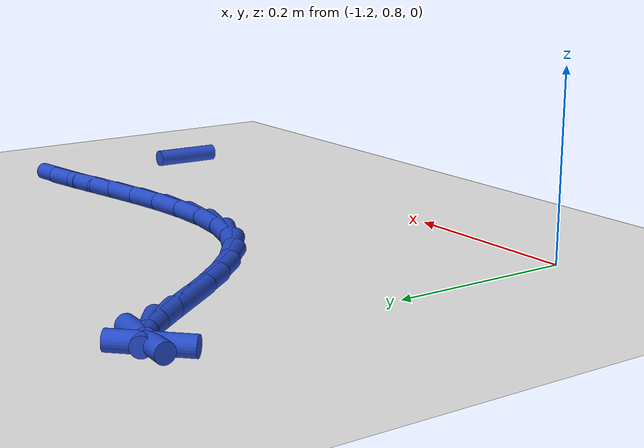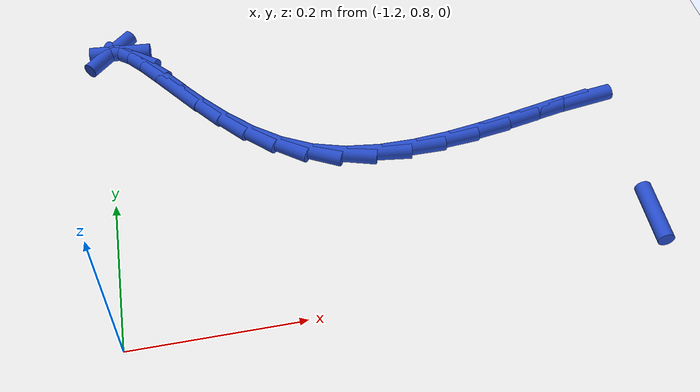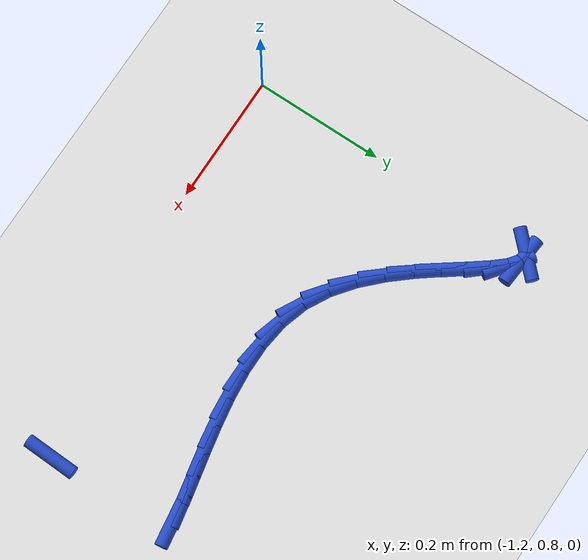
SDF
<sdf version="1.6">
 <world name="default">
  <model name="ground_plane">
   <static>1</static>
   <link name="link">
    <collision name="collision">
     <geometry><plane><normal>0 0 1</normal><size>100 100</size></plane></geometry>
     <surface><friction><ode><mu>100</mu><mu2>50</mu2></ode></friction></surface>
    </collision>
    <visual name="visual">
     <cast_shadows>0</cast_shadows>
     <geometry><plane><normal>0 0 1</normal><size>100 100</size></plane></geometry>
     <material>
      <script><uri>file://media/materials/scripts/gazebo.material</uri><name>Gazebo/WhiteGlow</name></script>
     </material>
    </visual>
   </link>
  </model>
  <model name="line">
   <link name="link_34">
    <pose>-0.5779277820706122 0.8586042943907588 0.01 0 1.57 1.5326726961803558</pose>
    <collision name="collision">
     <geometry><cylinder><radius>0.01</radius><length>0.08</length></cylinder></geometry>
    </collision>
    <visual name="visual">
     <material>
      <script><name>Gazebo/Blue</name><uri>file://media/materials/scripts/gazebo.material</uri></script>
     </material>
     <geometry><cylinder><radius>0.01</radius><length>0.08</length></cylinder></geometry>
    </visual>
   </link>
   <link name="link_43">
    <pose>-0.5984421162240932 1.0526860979696517 0.01 0 1.57 0.14355700047401923</pose>
    <collision name="collision">
     <geometry><cylinder><radius>0.01</radius><length>0.08</length></cylinder></geometry>
    </collision>
    <visual name="visual">
     <material>
      <script><name>Gazebo/Blue</name><uri>file://media/materials/scripts/gazebo.material</uri></script>
     </material>
     <geometry><cylinder><radius>0.01</radius><length>0.08</length></cylinder></geometry>
    </visual>
   </link>
   <link name="link_44">
    <pose>-0.6288400802435582 1.0482920306713335 0.01 0 1.57 0.19548418985887223</pose>
    <collision name="collision">
     <geometry><cylinder><radius>0.01</radius><length>0.08</length></cylinder></geometry>
    </collision>
    <visual name="visual">
     <material>
      <script><name>Gazebo/Blue</name><uri>file://media/materials/scripts/gazebo.material</uri></script>
     </material>
     <geometry><cylinder><radius>0.01</radius><length>0.08</length></cylinder></geometry>
    </visual>
   </link>
   <link name="link_45">
    <pose>-0.6639850225614471 1.0413328775841566 0.01 0 1.57 0.20791101739568002</pose>
    <collision name="collision">
     <geometry><cylinder><radius>0.01</radius><length>0.08</length></cylinder></geometry>
    </collision>
    <visual name="visual">
     <material>
      <script><name>Gazebo/Blue</name><uri>file://media/materials/scripts/gazebo.material</uri></script>
     </material>
     <geometry><cylinder><radius>0.01</radius><length>0.08</length></cylinder></geometry>
    </visual>
   </link>
   <link name="link_46">
    <pose>-0.7028580271560715 1.0331322468560424 0.01 0 1.57 0.19281450056939628</pose>
    <collision name="collision">
     <geometry><cylinder><radius>0.01</radius><length>0.08</length></cylinder></geometry>
    </collision>
    <visual name="visual">
     <material>
      <script><name>Gazebo/Blue</name><uri>file://media/materials/scripts/gazebo.material</uri></script>
     </material>
     <geometry><cylinder><radius>0.01</radius><length>0.08</length></cylinder></geometry>
    </visual>
   </link>
   <link name="link_47">
    <pose>-0.7444401780057441 1.0250137466349114 0.01 0 1.57 0.1539013766421355</pose>
    <collision name="collision">
     <geometry><cylinder><radius>0.01</radius><length>0.08</length></cylinder></geometry>
    </collision>
    <visual name="visual">
     <material>
      <script><name>Gazebo/Blue</name><uri>file://media/materials/scripts/gazebo.material</uri></script>
     </material>
     <geometry><cylinder><radius>0.01</radius><length>0.08</length></cylinder></geometry>
    </visual>
   </link>
   <link name="link_48">
    <pose>-0.787712559088777 1.0183009850686853 0.01 0 1.57 0.09040108089133105</pose>
    <collision name="collision">
     <geometry><cylinder><radius>0.01</radius><length>0.08</length></cylinder></geometry>
    </collision>
    <visual name="visual">
     <material>
      <script><name>Gazebo/Blue</name><uri>file://media/materials/scripts/gazebo.material</uri></script>
     </material>
     <geometry><cylinder><radius>0.01</radius><length>0.08</length></cylinder></geometry>
    </visual>
   </link>
   <link name="link_49">
    <pose>-0.8316562543834821 1.0143175703052851 0.01 0 1.57 -0.0015950999920103155</pose>
    <collision name="collision">
     <geometry><cylinder><radius>0.01</radius><length>0.08</length></cylinder></geometry>
    </collision>
    <visual name="visual">
     <material>
      <script><name>Gazebo/Blue</name><uri>file://media/materials/scripts/gazebo.material</uri></script>
     </material>
     <geometry><cylinder><radius>0.01</radius><length>0.08</length></cylinder></geometry>
    </visual>
   </link>
   <link name="link_50">
    <pose>-0.8752523478681721 1.0143871104926323 0.01 0 1.57 -0.12825628001047357</pose>
    <collision name="collision">
     <geometry><cylinder><radius>0.01</radius><length>0.08</length></cylinder></geometry>
    </collision>
    <visual name="visual">
     <material>
      <script><name>Gazebo/Blue</name><uri>file://media/materials/scripts/gazebo.material</uri></script>
     </material>
     <geometry><cylinder><radius>0.01</radius><length>0.08</length></cylinder></geometry>
    </visual>
   </link>
   <link name="link_51">
    <pose>-0.9174819235211589 1.0198332137786479 0.01 0 1.57 -0.2958955044156219</pose>
    <collision name="collision">
     <geometry><cylinder><radius>0.01</radius><length>0.08</length></cylinder></geometry>
    </collision>
    <visual name="visual">
     <material>
      <script><name>Gazebo/Blue</name><uri>file://media/materials/scripts/gazebo.material</uri></script>
     </material>
     <geometry><cylinder><radius>0.01</radius><length>0.08</length></cylinder></geometry>
    </visual>
   </link>
   <link name="link_52">
    <pose>-0.9573260653207549 1.0319794883112527 0.01 0 1.57 -0.4928797768121747</pose>
    <collision name="collision">
     <geometry><cylinder><radius>0.01</radius><length>0.08</length></cylinder></geometry>
    </collision>
    <visual name="visual">
     <material>
      <script><name>Gazebo/Blue</name><uri>file://media/materials/scripts/gazebo.material</uri></script>
     </material>
     <geometry><cylinder><radius>0.01</radius><length>0.08</length></cylinder></geometry>
    </visual>
   </link>
   <link name="link_53">
    <pose>-0.9939422205457629 1.0516457663799597 0.01 0 1.57 -0.6581254125900383</pose>
    <collision name="collision">
     <geometry><cylinder><radius>0.01</radius><length>0.08</length></cylinder></geometry>
    </collision>
    <visual name="visual">
     <material>
      <script><name>Gazebo/Blue</name><uri>file://media/materials/scripts/gazebo.material</uri></script>
     </material>
     <geometry><cylinder><radius>0.01</radius><length>0.08</length></cylinder></geometry>
    </visual>
   </link>
   <link name="link_54">
    <pose>-1.0272716527477728 1.0774129353545727 0.01 0 1.57 -0.7791599914562944</pose>
    <collision name="collision">
     <geometry><cylinder><radius>0.01</radius><length>0.08</length></cylinder></geometry>
    </collision>
    <visual name="visual">
     <material>
      <script><name>Gazebo/Blue</name><uri>file://media/materials/scripts/gazebo.material</uri></script>
     </material>
     <geometry><cylinder><radius>0.01</radius><length>0.08</length></cylinder></geometry>
    </visual>
   </link>
   <link name="link_55">
    <pose>-1.057473298693066 1.1072401063607482 0.01 0 1.57 -0.86332951874798</pose>
    <collision name="collision">
     <geometry><cylinder><radius>0.01</radius><length>0.08</length></cylinder></geometry>
    </collision>
    <visual name="visual">
     <material>
      <script><name>Gazebo/Blue</name><uri>file://media/materials/scripts/gazebo.material</uri></script>
     </material>
     <geometry><cylinder><radius>0.01</radius><length>0.08</length></cylinder></geometry>
    </visual>
   </link>
   <link name="link_56">
    <pose>-1.084706103627189 1.1390863663034132 0.01 0 1.57 -0.9162353490977402</pose>
    <collision name="collision">
     <geometry><cylinder><radius>0.01</radius><length>0.08</length></cylinder></geometry>
    </collision>
    <visual name="visual">
     <material>
      <script><name>Gazebo/Blue</name><uri>file://media/materials/scripts/gazebo.material</uri></script>
     </material>
     <geometry><cylinder><radius>0.01</radius><length>0.08</length></cylinder></geometry>
    </visual>
   </link>
   <link name="link_57">
    <pose>-1.1091290127956868 1.1709108020874945 0.01 0 1.57 -0.939212798556779</pose>
    <collision name="collision">
     <geometry><cylinder><radius>0.01</radius><length>0.08</length></cylinder></geometry>
    </collision>
    <visual name="visual">
     <material>
      <script><name>Gazebo/Blue</name><uri>file://media/materials/scripts/gazebo.material</uri></script>
     </material>
     <geometry><cylinder><radius>0.01</radius><length>0.08</length></cylinder></geometry>
    </visual>
   </link>
   <link name="link_58">
    <pose>-1.1309009714441047 1.2006725006179186 0.01 0 1.57 -0.9263874654811184</pose>
    <collision name="collision">
     <geometry><cylinder><radius>0.01</radius><length>0.08</length></cylinder></geometry>
    </collision>
    <visual name="visual">
     <material>
      <script><name>Gazebo/Blue</name><uri>file://media/materials/scripts/gazebo.material</uri></script>
     </material>
     <geometry><cylinder><radius>0.01</radius><length>0.08</length></cylinder></geometry>
    </visual>
   </link>
   <link name="link_59">
    <pose>-1.150180924817988 1.226330548799612 0.01 0 1.57 -0.8556762204629264</pose>
    <collision name="collision">
     <geometry><cylinder><radius>0.01</radius><length>0.08</length></cylinder></geometry>
    </collision>
    <visual name="visual">
     <material>
      <script><name>Gazebo/Blue</name><uri>file://media/materials/scripts/gazebo.material</uri></script>
     </material>
     <geometry><cylinder><radius>0.01</radius><length>0.08</length></cylinder></geometry>
    </visual>
   </link>
   <link name="link_60">
    <pose>-1.167127818162882 1.245844033537501 0.01 0 1.57 -0.6541769925117694</pose>
    <collision name="collision">
     <geometry><cylinder><radius>0.01</radius><length>0.08</length></cylinder></geometry>
    </collision>
    <visual name="visual">
     <material>
      <script><name>Gazebo/Blue</name><uri>file://media/materials/scripts/gazebo.material</uri></script>
     </material>
     <geometry><cylinder><radius>0.01</radius><length>0.08</length></cylinder></geometry>
    </visual>
   </link>
   <link name="link_61">
    <pose>-1.1819005967243323 1.2571720417365129 0.01 0 1.57 -0.08613626146449604</pose>
    <collision name="collision">
     <geometry><cylinder><radius>0.01</radius><length>0.08</length></cylinder></geometry>
    </collision>
    <visual name="visual">
     <material>
      <script><name>Gazebo/Blue</name><uri>file://media/materials/scripts/gazebo.material</uri></script>
     </material>
     <geometry><cylinder><radius>0.01</radius><length>0.08</length></cylinder></geometry>
    </visual>
   </link>
   <link name="link_62">
    <pose>-1.1946582057478843 1.258273660301574 0.01 0 1.57 0.7870718419445214</pose>
    <collision name="collision">
     <geometry><cylinder><radius>0.01</radius><length>0.08</length></cylinder></geometry>
    </collision>
    <visual name="visual">
     <material>
      <script><name>Gazebo/Blue</name><uri>file://media/materials/scripts/gazebo.material</uri></script>
     </material>
     <geometry><cylinder><radius>0.01</radius><length>0.08</length></cylinder></geometry>
    </visual>
   </link>
  </model>
 </world>
</sdf>
